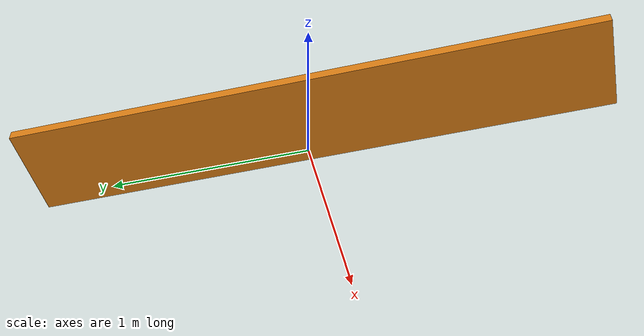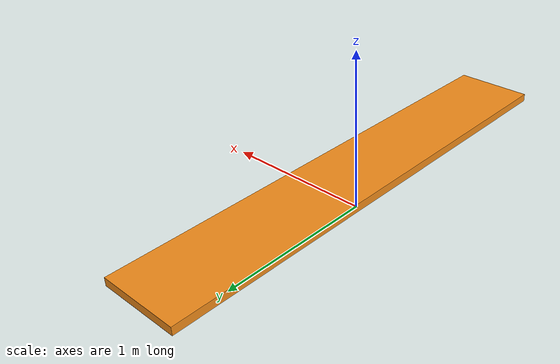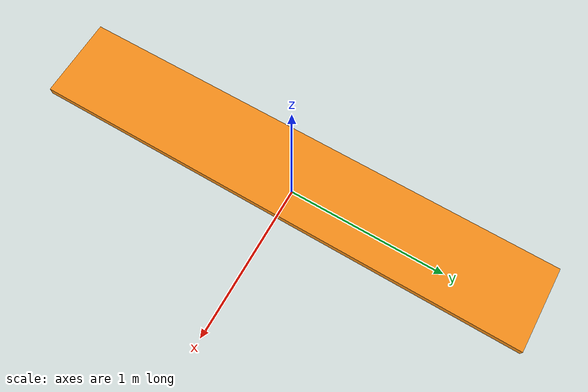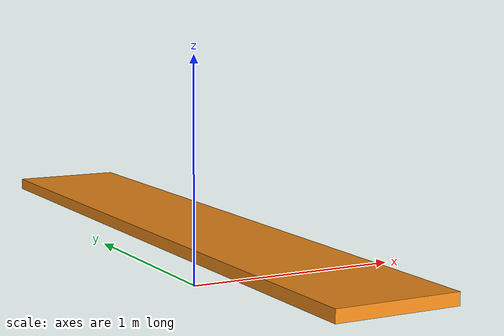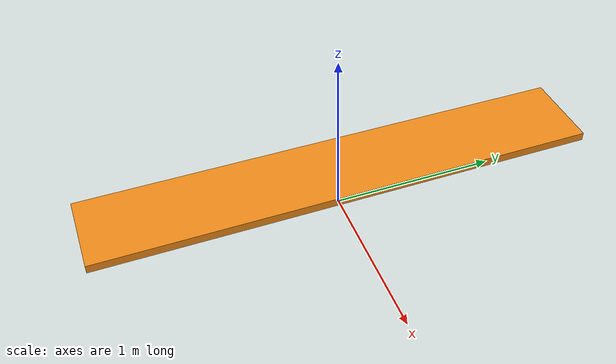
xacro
<?xml version="1.0" encoding="utf-8"?>
<robot xmlns:xacro="http://www.ros.org/wiki/xacro" name="liukuhihna_gazebo">

	<xacro:arg name="height" default="0.25" />
  	<xacro:arg name="length"   default="3" />

	<xacro:property name="height" value="$(arg height)" />
	<xacro:property name="length" value="$(arg length)" />

	<xacro:include filename="$(find recon_sim)/urdf/materials.xacro" />

	<link name="world" />

	<joint name="fixed" type="fixed">
		<parent link="world"/>
		<child link="belt_visual"/>
		<origin xyz="0.0 0.0 0.0" rpy="0.0 0.0 0"/>
	</joint>

	<link name="belt_visual">
		<inertial>
			<origin xyz="0 0 ${height}" rpy="0 0 0" />
			<mass value="71.953" />
			<inertia ixx="7.5972" ixy="-1.394E-14" ixz="1.9328E-17" iyy="0.99673" iyz="-9.2056E-18" izz="8.1168" />
		</inertial>
		<visual>
			<origin xyz="0 0 ${height}" rpy="0 0 0" />
			<geometry>
				<box size="0.5 ${length} 0.05"/>
			</geometry>
			<material name="orange"/>
		</visual>
		<collision>
			<origin xyz="0 0 ${height/2}" rpy="0 0 0" />
			<geometry>
				<box size="0.5 ${length} ${height}"/>
			</geometry>
		</collision>
	</link>

	<joint name="belt_joint" type="prismatic">
		<origin xyz="0.0 0.0 ${height + 0.025}" rpy="0.0 0.0 0.0"/>
		<parent link="belt_visual"/>
		<child link="belt_moving"/>
		<axis xyz="0 1 0"/>
		<limit lower="0.0" upper="1" effort="1000" velocity="1000"/>
	</joint>

	<link name="belt_moving">
		<inertial>
			<origin xyz="0.0 0.0 0.0" rpy="0.0 0.0 0.0"/>
			<mass value="100"/>
			<inertia ixx="0.0" ixy="0.0" ixz="0.0" iyy="0.0" iyz="0.0" izz="0.0"/>
		</inertial>
		<collision>
			<origin xyz="0.0 0.0 0.0005" rpy="0.0 0.0 0.0"/>
			<geometry>
				<box size="0.5 ${length} 0.001"/>
			</geometry>
		</collision>
	</link>

	<gazebo>
		<plugin name="conveyor_belt_plugin" filename="libROSConveyorBeltPlugin.so">
			<robot_namespace>/</robot_namespace>
			<link>belt_moving</link>
			<power>0</power>
			<max_velocity>1.0</max_velocity>
		</plugin>
	</gazebo>
</robot>
